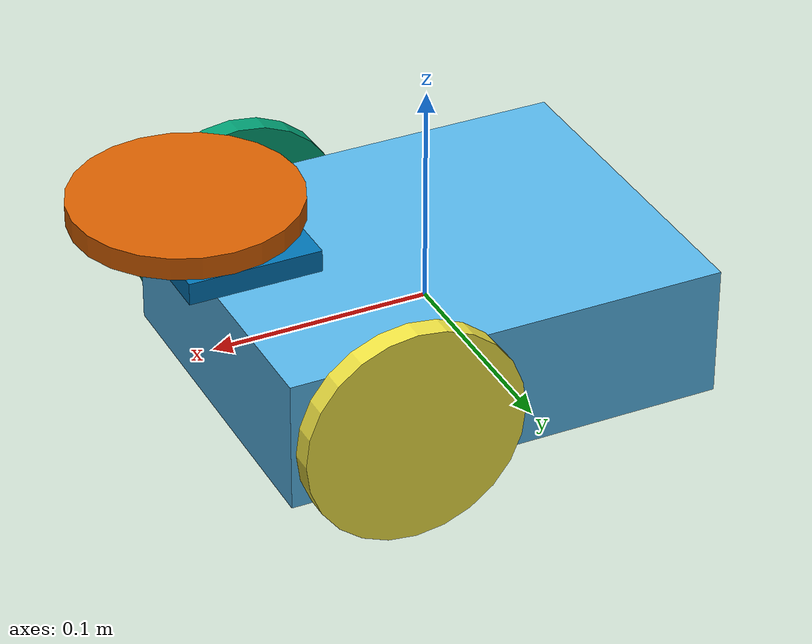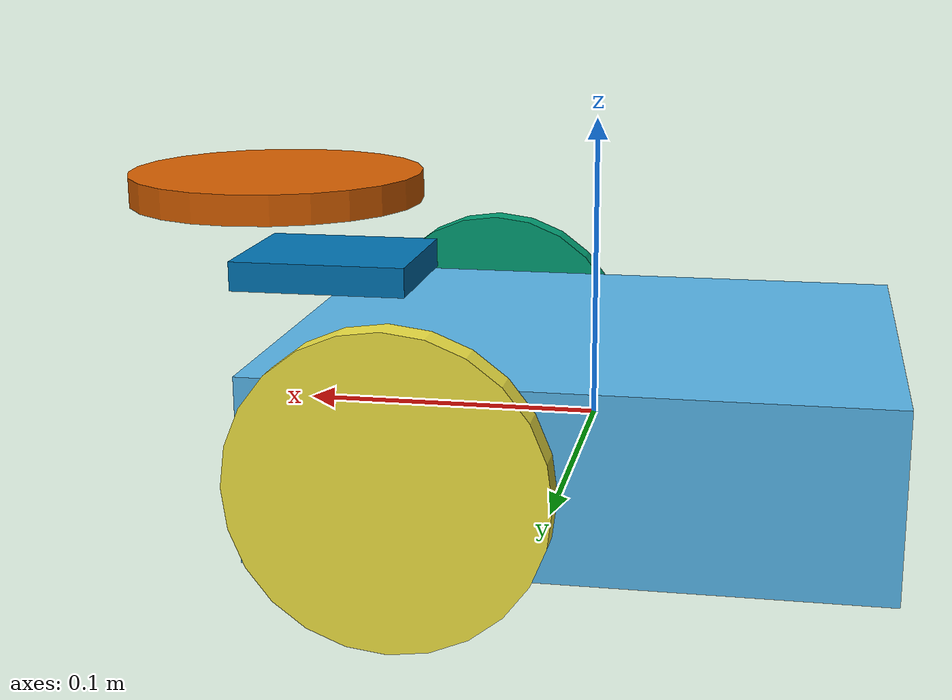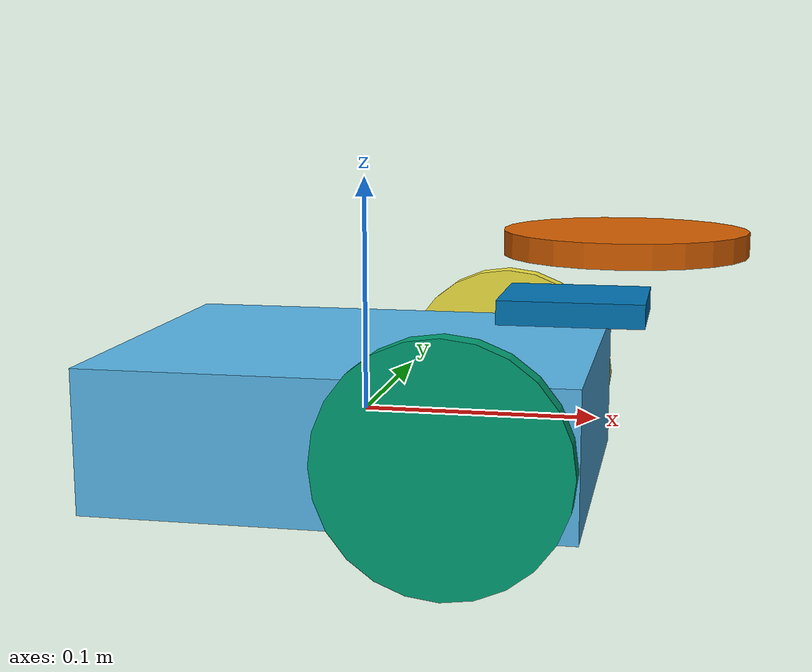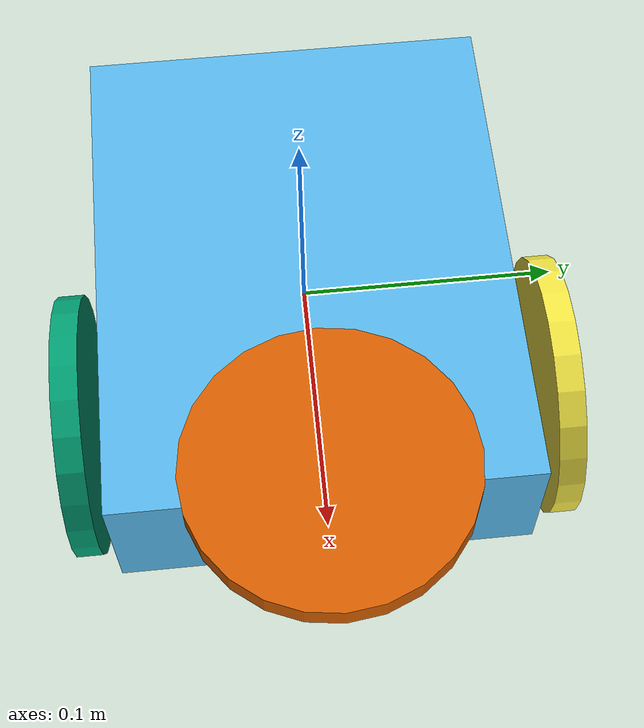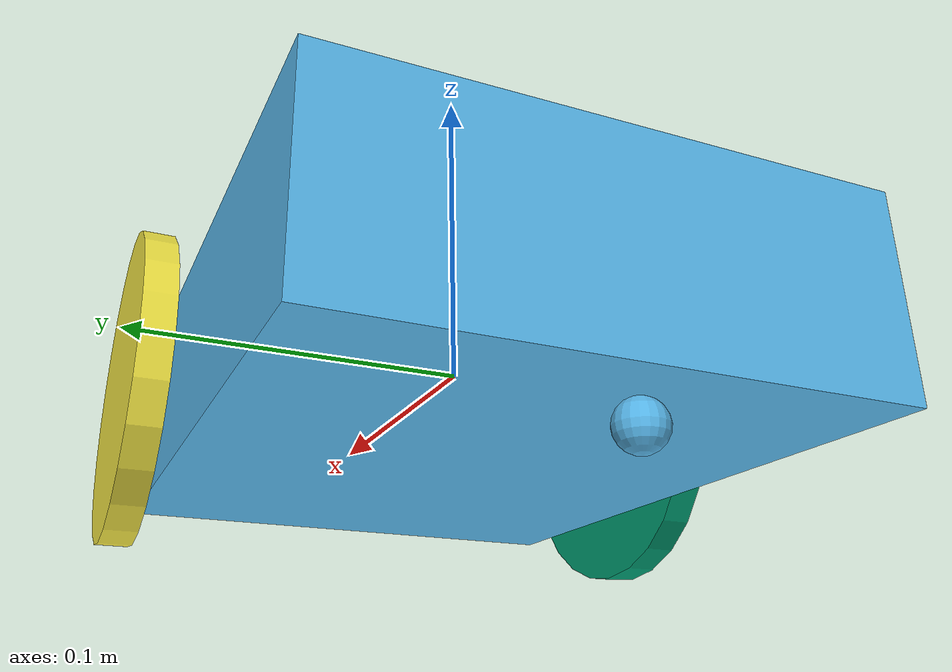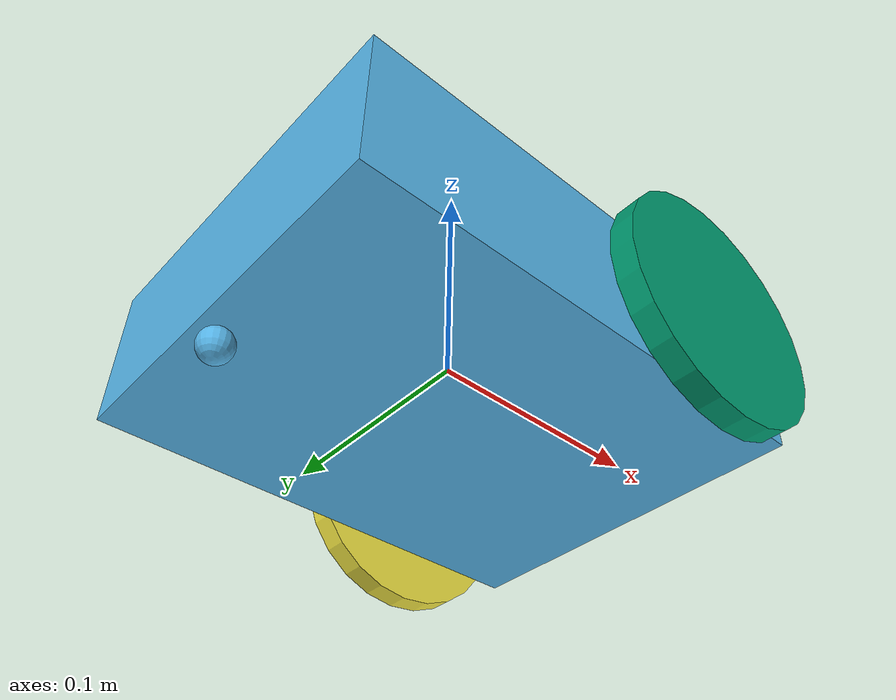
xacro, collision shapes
<?xml version="1.0" ?>
<!-- PuzzleBot differential drive -->
<robot name="puzzlebot" xmlns:xacro="http://www.ros.org/wiki/xacro">

<!-- files for gazebo costumization -->
<xacro:include filename="$(find puzzlebot_gazebo)/urdf/materials.xacro" />
<xacro:include filename="$(find puzzlebot_gazebo)/urdf/parameters.xacro" />
<xacro:include filename="$(find puzzlebot_gazebo)/urdf/puzzlebot.gazebo" />
<xacro:include filename="$(find puzzlebot_gazebo)/urdf/macros.xacro" />
<xacro:arg name="prefix" default=""/>.
<!-- Dummy link to fiz robot chassis -->

  <link name="$(arg prefix)base_link">
    <pose>0 0 0 0 0 0</pose>
  </link>

  <joint name="base_link_to_chassis" type="fixed">
	   <parent link="$(arg prefix)base_link"/>
	   <child link="$(arg prefix)chassis"/>
  </joint>

  <link name="$(arg prefix)chassis">
    <pose>0 0 0 0 0 0</pose>
    <visual>

       <!-- with mesh  -->
      <origin xyz="0 0 0" rpy="${PI/2} 0 ${PI/2}"/>
          <geometry>
          	 <mesh filename="file://${mesh_chassis}"/>
          </geometry>
    </visual>

    <collision name="collision_chassis">
    	<origin rpy="0 0 0" xyz="0 0 0"/>
          <geometry>
            	 <box size="${chassisX} ${chassisY} ${chassisZ}"/>
          </geometry>
    </collision>
    <inertial>
      <mass value="${chassisMass}"/>
      <xacro:box_inertia m="${chassisMass}" x="${chassisX}" y="${chassisY}" z="${chassisZ}" />
    </inertial>

   <!-- agregar caster wheel en frame -->
    <collision>
	    <origin xyz="-0.095 0 -0.0425" rpy="0 0 0"/>
		  <geometry>
		     <sphere radius="${casterRadius}"/>
		  </geometry>
		        <surface>
	      <friction>
	         <ode>
	          <slip1>0.0</slip1>
	          <slip2>0.0</slip2>
	         </ode>
	      </friction>
      </surface>
	  </collision>

	  <visual>
      <origin xyz="-0.095 0 -0.0425" rpy="0 0 0"/>
          <geometry>
          	   <sphere radius="${casterRadius}"/>
          </geometry>
    </visual>

  </link>

 <!--RIGHT WHEEL -->
	<link name="$(arg prefix)right_wheel">
	  <visual>
	  	<origin xyz="0 0 0" rpy="-${PI/2} 0 0" />
	    <geometry>
	      <!-- with mesh-->
	      	<mesh filename="file://${mesh_wheel}"/>
	    </geometry>
	  </visual>

	  <collision>
		  <origin xyz="0 0 0 " rpy="-${PI/2} 0 0"/>
			  <geometry>
			     <cylinder length="${wheelHeight}" radius="${wheelRadius}" />
			  </geometry>
	  </collision>

	  <inertial>
		  <mass value="${wheelMass}"/>
		  <origin xyz="0 0 0" rpy="${PI/2} 0 0"/>
		  <xacro:wheel_inertia r="${wheelRadius}" l="${wheelHeight}" m="${wheelMass}"/>
	  </inertial>

	</link>

<!-- LEFT WHEEL -->
	<link name="$(arg prefix)left_wheel">
	  <visual>
	    <geometry>
        <!-- with mesh-->
	      	<mesh filename="file://${mesh_wheel}"/>
	    </geometry>
	    <origin xyz="0 0 0" rpy="${PI/2} 0 0" />
	  </visual>

	  <collision>
		  <origin xyz="0 0 0" rpy="${PI/2} 0 0" />
		  <geometry>
		     <cylinder length="${wheelHeight}" radius="${wheelRadius}"/>
		  </geometry>
	  </collision>

	  <inertial>
		  <mass value="${wheelMass}"/>
		  <origin xyz="0 0 0" rpy="${PI/2} 0 0"/>
		  <xacro:wheel_inertia r="${wheelRadius}" l="${wheelHeight}" m="${wheelMass}" />
	  </inertial>
	</link>

    <!-- CAMERA-->
    <link name="$(arg prefix)camera">
        <inertial>
                <origin rpy="0 0 0" xyz="0 0 0"/>
                <mass value="0.007"/>
                <inertia ixx="0.166667" ixy="0" ixz="0" iyy="0.166667" iyz="0" izz="0.166667"/>
                <!-- ad camera inertia -->
        </inertial>

        <collision name="collision_chassis">
                <origin rpy="0 0 0" xyz="0 0 0"/>
                <geometry>
                    <box size="0.05 0.01 0.06" />
                </geometry>
        </collision>

        <visual>

                <!-- with mesh-->
                <origin rpy="0 0 ${PI}" xyz="0 0 0"/>
                <geometry>
                <mesh filename="file://${mesh_camera}"/>
                </geometry>
        </visual>
    </link>

		<!-- LIDAR-->
	<link name="$(arg prefix)lidar">
		<inertial>
			<mass value="0.1" />
			<origin xyz="0 0 0" />
			<inertia ixx="0.01" ixy="0.0" ixz="0.0"
					 iyy="0.01" iyz="0.0"
					 izz="0.01" />
		</inertial>
		<collision>
			<origin xyz="-0.06 0.0 -0.04" rpy="0 0 0" />
			<geometry>
				<cylinder length="0.01" radius="0.05"/>
			</geometry>
		</collision>
        <visual>
			<origin rpy="${PI/2} 0 0" xyz="0.07 -0.013 -0.04" />
            <geometry>
                <mesh filename="file://${mesh_lidar}" />
            </geometry>
        </visual>
    </link>

<!-- JOINTS  -->

  <joint name="base_to_right_w" type="continuous">
	  <parent link="$(arg prefix)chassis" />
	  <child link="$(arg prefix)right_wheel" />
	  <origin xyz="0.05 -0.09 0.0" />
		<axis xyz="0 1 0" rpy="0 0 0" />
	</joint>

	<joint name="base_to_left_w" type="continuous">
	  <parent link="$(arg prefix)chassis" />
	  <child link="$(arg prefix)left_wheel" />
	  <origin xyz="0.05 0.09 0" />
	  <axis xyz="0 1 0" rpy="0 0 0" />
	</joint>

    <joint name="camera_to_base" type="fixed">
		<parent link="$(arg prefix)chassis" />
		<child link="$(arg prefix)camera" />
		<origin xyz="0.09 0 0.048" rpy= "${PI/2} ${PI} ${PI/2}" />
  	</joint>

	<joint name="lidar_to_base" type="fixed">
        <parent link="$(arg prefix)chassis"/>
        <child link="$(arg prefix)lidar"/>
        <origin xyz="0.05 0 0.115" rpy="0 0 ${PI}"/>
    </joint>

	<!-- TRANSMISSIONS (For a more complex model and it represents actuator attributes) -->
	<transmission name="right_wheel_trans">
		<type>transmission_interface/SimpleTransmission</type>
		<joint name="base_to_right_w">
			<hardwareInterface>hardware_interface/EffortJointInterface</hardwareInterface>
		</joint>
		<actuator name="right_wheel_motor">
		<mechanicalReduction>34</mechanicalReduction>
		<hardwareInterface>hardware_interface/EffortJointInterface</hardwareInterface>
		</actuator>
	</transmission>

	<transmission name="left_wheel_trans">
		<type>transmission_interface/SimpleTransmission</type>
		<joint name="base_to_left_w">
			<hardwareInterface>hardware_interface/EffortJointInterface</hardwareInterface>
		</joint>
		<actuator name="left_wheel_motor">
		<mechanicalReduction>34</mechanicalReduction>
		<hardwareInterface>hardware_interface/EffortJointInterface</hardwareInterface>
		</actuator>
	</transmission>
</robot>

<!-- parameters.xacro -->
<robot xmlns:xacro="http://www.ros.org/wiki/xacro">

<!--parameters for gazebo properties-->
<xacro:property name="PI" value="3.1415926535897931"/>

<xacro:property name="chassisX" value="0.2"/>
<xacro:property name="chassisY" value="0.16"/>
<xacro:property name="chassisZ" value="0.06"/>
<xacro:property name="chassisMass" value="0.710"/>

<xacro:property name="casterRadius" value="0.0065"/>
<xacro:property name="casterMass" value="0.012"/>

<xacro:property name="wheelHeight" value="0.01"/>
<xacro:property name="wheelRadius" value="0.05"/>
<xacro:property name="wheelPos" value="0.05"/>
<xacro:property name="wheelDistance" value="0.08"/>
<xacro:property name="wheelMass" value="0.03"/>

<xacro:property name="cameraSize" value="0.07"/>
<xacro:property name="cameraMass" value="0.018"/>
<xacro:property name="cameraX" value="0.02"/>
<xacro:property name="cameraY" value="0.04"/>
<xacro:property name="cameraZ" value="0.06"/>

<xacro:property name="mesh_chassis"  value="$(find puzzlebot_gazebo)/meshes/chassis.stl" />
<xacro:property name="mesh_wheel"  value="$(find puzzlebot_gazebo)/meshes/wheel.stl" />
<xacro:property name="mesh_camera"  value="$(find puzzlebot_gazebo)/meshes/camera.stl" />
<xacro:property name="mesh_lidar"  value="$(find puzzlebot_gazebo)/meshes/lidar.stl" />

</robot>
